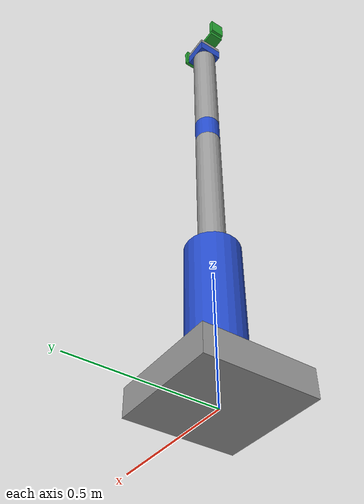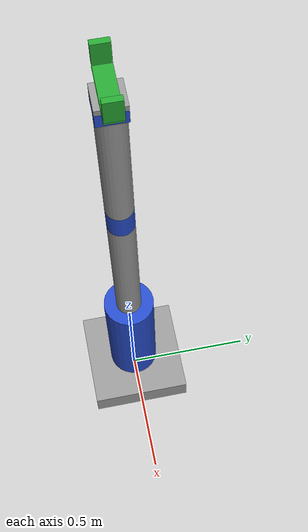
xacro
<?xml version="1.0"?>
<robot xmlns:xacro="http://www.ros.org/wiki/xacro" name="my_robot">
    <xacro:arg name="initial_positions_file" default="initial_positions.yaml" />

    <!-- Import my_robot urdf file -->
    <xacro:include filename="$(find my_robot_description)/urdf/my_robot.urdf.xacro" />

    <!-- Import control_xacro -->
    <xacro:include filename="my_robot.ros2_control.xacro" />

    <xacro:my_robot_ros2_control name="GazeboSystem" initial_positions_file="$(arg initial_positions_file)"/>

</robot>

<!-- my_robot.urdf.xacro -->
<robot xmlns:xacro="http://www.ros.org/wiki/xacro" name="my_robot">

    <!-- Include all component files -->
    <xacro:include filename="common_properties.xacro" />
    <xacro:include filename="arm.xacro" />
    <xacro:include filename="gripper.xacro" />

    <!-- Gazebo-specific configuration MUST come after all links/joints are defined -->
    <xacro:include filename="gazebo.xacro" />

</robot>

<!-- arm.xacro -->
<robot xmlns:xacro="http://www.ros.org/wiki/xacro">

    <link name="base_link">
        <visual>
            <geometry>
                <box size="0.4 0.4 0.1" />
            </geometry>
            <origin xyz="0 0 0.05" rpy="0 0 0" />
            <material name="grey" />
        </visual>
        <collision>
            <geometry>
                <box size="0.4 0.4 0.1" />
            </geometry>
            <origin xyz="0 0 0.05" rpy="0 0 0" />
        </collision>
        <inertial>
            <origin xyz="0 0 0.05" rpy="0 0 0" />
            <mass value="100.0" />
            <inertia ixx="0.0708" ixy="0.0" ixz="0.0"
                     iyy="0.0708" iyz="0.0"
                     izz="0.1333" />
        </inertial>
    </link>

    <link name="shoulder_link">
        <visual>
            <geometry>
                <cylinder length="0.5" radius="0.1" />
            </geometry>
            <origin xyz="0 0 0.25" rpy="0 0 0" />
            <material name="blue" />
        </visual>
        <collision>
            <geometry>
                <box size="0.2 0.2 0.5" />
            </geometry>
            <origin xyz="0 0 0.25" rpy="0 0 0" />
        </collision>
        <inertial>
            <origin xyz="0 0 0.25" rpy="0 0 0" />
            <mass value="2.0" />
            <inertia ixx="0.0450" ixy="0.0" ixz="0.0"
                     iyy="0.0450" iyz="0.0"
                     izz="0.0133" />
        </inertial>
    </link>

    <link name="arm_link">
        <visual>
            <geometry>
                <cylinder length="0.6" radius="0.05" />
            </geometry>
            <origin xyz="0 0 0.3" rpy="0 0 0" />
            <material name="grey" />
        </visual>
        <collision>
            <geometry>
                <box size="0.1 0.1 0.6" />
            </geometry>
            <origin xyz="0 0 0.3" rpy="0 0 0" />
        </collision>
        <inertial>
            <origin xyz="0 0 0.3" rpy="0 0 0" />
            <mass value="1.5" />
            <inertia ixx="0.0463" ixy="0.0" ixz="0.0"
                     iyy="0.0463" iyz="0.0"
                     izz="0.0025" />
        </inertial>
    </link>

    <link name="elbow_link">
        <visual>
            <geometry>
                <cylinder length="0.1" radius="0.05" />
            </geometry>
            <origin xyz="0 0 0.05" rpy="0 0 0" />
            <material name="blue" />
        </visual>
        <collision>
            <geometry>
                <box size="0.1 0.1 0.1" />
            </geometry>
            <origin xyz="0 0 0.05" rpy="0 0 0" />
        </collision>
        <inertial>
            <origin xyz="0 0 0.05" rpy="0 0 0" />
            <mass value="0.5" />
            <inertia ixx="0.0008" ixy="0.0" ixz="0.0"
                     iyy="0.0008" iyz="0.0"
                     izz="0.0008" />
        </inertial>
    </link>

    <link name="forearm_link">
        <visual>
            <geometry>
                <cylinder length="0.5" radius="0.05" />
            </geometry>
            <origin xyz="0 0 0.25" rpy="0 0 0" />
            <material name="grey" />
        </visual>
        <collision>
            <geometry>
                <box size="0.1 0.1 0.5" />
            </geometry>
            <origin xyz="0 0 0.25" rpy="0 0 0" />
        </collision>
        <inertial>
            <origin xyz="0 0 0.25" rpy="0 0 0" />
            <mass value="1.0" />
            <inertia ixx="0.0217" ixy="0.0" ixz="0.0"
                     iyy="0.0217" iyz="0.0"
                     izz="0.0017" />
        </inertial>
    </link>

    <link name="wrist_link">
        <visual>
            <geometry>
                <box size="0.1 0.1 0.05" />
            </geometry>
            <origin xyz="0 0 0.025" rpy="0 0 0" />
            <material name="blue" />
        </visual>
        <collision>
            <geometry>
                <box size="0.1 0.1 0.05" />
            </geometry>
            <origin xyz="0 0 0.025" rpy="0 0 0" />
        </collision>
        <inertial>
            <origin xyz="0 0 0.025" rpy="0 0 0" />
            <mass value="0.3" />
            <inertia ixx="0.0002" ixy="0.0" ixz="0.0"
                     iyy="0.0002" iyz="0.0"
                     izz="0.0005" />
        </inertial>
    </link>

    <link name="hand_link">
        <visual>
            <geometry>
                <box size="0.1 0.1 0.02" />
            </geometry>
            <origin xyz="0 0 0.01" rpy="0 0 0" />
            <material name="grey" />
        </visual>
        <collision>
            <geometry>
                <box size="0.1 0.1 0.02" />
            </geometry>
            <origin xyz="0 0 0.01" rpy="0 0 0" />
        </collision>
        <inertial>
            <origin xyz="0 0 0.01" rpy="0 0 0" />
            <mass value="0.2" />
            <inertia ixx="0.0001" ixy="0.0" ixz="0.0"
                     iyy="0.0001" iyz="0.0"
                     izz="0.0003" />
        </inertial>
    </link>

    <link name="tool_link">
        <inertial>
            <origin xyz="0 0 0" rpy="0 0 0" />
            <mass value="0.01" />
            <inertia ixx="0.00001" ixy="0.0" ixz="0.0"
                     iyy="0.00001" iyz="0.0"
                     izz="0.00001" />
        </inertial>
    </link>

    <joint name="joint1" type="revolute">
        <parent link="base_link" />
        <child link="shoulder_link" />
        <origin xyz="0 0 0.1" rpy="0 0 0" />
        <axis xyz="0 0 1" />
        <limit effort="1000.0" velocity="1.0" lower="-3.14" upper="3.14" />
    </joint>

    <joint name="joint2" type="revolute">
        <parent link="shoulder_link" />
        <child link="arm_link" />
        <origin xyz="0 0 0.5" rpy="0 0 0" />
        <axis xyz="0 1 0" />
        <limit lower="0" upper="2.5" effort="1000.0" velocity="1.0" />
    </joint>

    <joint name="joint3" type="revolute">
        <parent link="arm_link" />
        <child link="elbow_link" />
        <origin xyz="0 0 0.6" rpy="0 0 0" />
        <axis xyz="0 1 0" />
        <limit effort="1000.0" velocity="1.0" lower="0" upper="2.5" />
    </joint>

    <!-- Joints 4, 5, 6 are now FIXED - they won't move -->
    <joint name="joint4" type="fixed">
        <parent link="elbow_link" />
        <child link="forearm_link" />
        <origin xyz="0 0 0.1" rpy="0 0 0" />
    </joint>

    <joint name="joint5" type="fixed">
        <parent link="forearm_link" />
        <child link="wrist_link" />
        <origin xyz="0 0 0.5" rpy="0 0 0" />
    </joint>

    <joint name="joint6" type="fixed">
        <parent link="wrist_link" />
        <child link="hand_link" />
        <origin xyz="0 0 0.05" rpy="0 0 0" />
    </joint>

    <joint name="hand_tool_joint" type="fixed">
        <parent link="hand_link" />
        <child link="tool_link" />
        <origin xyz="0 0 0.02" rpy="0 0 0" />
    </joint>

</robot>

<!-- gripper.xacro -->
<robot xmlns:xacro="http://www.ros.org/wiki/xacro">

    <link name="gripper_base_link">
        <visual>
            <geometry>
                <box size="0.2 0.06 0.02" />
            </geometry>
            <origin xyz="0 0 0.01" rpy="0 0 0" />
            <material name="dark_green" />
        </visual>
        <collision>
            <geometry>
                <box size="0.2 0.06 0.02" />
            </geometry>
            <origin xyz="0 0 0.01" rpy="0 0 0" />
        </collision>
        <inertial>
            <origin xyz="0 0 0.01" rpy="0 0 0" />
            <mass value="0.1" />
            <inertia ixx="0.00003" ixy="0.0" ixz="0.0"
                     iyy="0.00003" iyz="0.0"
                     izz="0.00004" />
        </inertial>
    </link>

    <link name="gripper_left_finger_link">
        <visual>
            <geometry>
                <box size="0.02 0.06 0.08" />
            </geometry>
            <origin xyz="0 0 0.04" rpy="0 0 0" />
            <material name="light_green" />
        </visual>
        <collision>
            <geometry>
                <box size="0.02 0.06 0.08" />
            </geometry>
            <origin xyz="0 0 0.04" rpy="0 0 0" />
        </collision>
        <inertial>
            <origin xyz="0 0 0.04" rpy="0 0 0" />
            <mass value="0.05" />
            <inertia ixx="0.00003" ixy="0.0" ixz="0.0"
                     iyy="0.00003" iyz="0.0"
                     izz="0.00001" />
        </inertial>
    </link>

    <joint name="gripper_left_finger_joint" type="prismatic">
        <parent link="gripper_base_link" />
        <child link="gripper_left_finger_link" />
        <origin xyz="-0.10 0 0.02" rpy="0 0 0" />
        <axis xyz="1 0 0" />
        <limit lower="0.0" upper="0.04" effort="1000.0" velocity="1.0" />
    </joint>

    <link name="gripper_right_finger_link">
        <visual>
            <geometry>
                <box size="0.02 0.06 0.08" />
            </geometry>
            <origin xyz="0 0 0.04" rpy="0 0 0" />
            <material name="light_green" />
        </visual>
        <collision>
            <geometry>
                <box size="0.02 0.06 0.08" />
            </geometry>
            <origin xyz="0 0 0.04" rpy="0 0 0" />
        </collision>
        <inertial>
            <origin xyz="0 0 0.04" rpy="0 0 0" />
            <mass value="0.05" />
            <inertia ixx="0.00003" ixy="0.0" ixz="0.0"
                     iyy="0.00003" iyz="0.0"
                     izz="0.00001" />
        </inertial>
    </link>

    <joint name="gripper_right_finger_joint" type="prismatic">
        <parent link="gripper_base_link" />
        <child link="gripper_right_finger_link" />
        <origin xyz="0.10 0 0.02" rpy="0 0 0" />
        <axis xyz="-1 0 0" />
        <limit lower="0.0" upper="0.04" effort="1000.0" velocity="1.0" />
    </joint>

    <!-- Wrist rotation link (for gripper yaw) -->
    <link name="wrist_rotation_link">
        <visual>
            <geometry>
                <cylinder radius="0.02" length="0.01" />
            </geometry>
            <origin xyz="0 0 0" rpy="0 0 0" />
            <material name="dark_grey" />
        </visual>
        <collision>
            <geometry>
                <cylinder radius="0.02" length="0.01" />
            </geometry>
            <origin xyz="0 0 0" rpy="0 0 0" />
        </collision>
        <inertial>
            <origin xyz="0 0 0" rpy="0 0 0" />
            <mass value="0.1" />
            <inertia ixx="0.00001" ixy="0.0" ixz="0.0"
                     iyy="0.00001" iyz="0.0"
                     izz="0.00001" />
        </inertial>
    </link>

    <!-- Wrist rotation joint (yaw for gripper orientation) -->
    <joint name="wrist_rotation_joint" type="revolute">
        <parent link="tool_link" />
        <child link="wrist_rotation_link" />
        <origin xyz="0 0 0" rpy="0 0 0" />
        <axis xyz="0 0 1" />
        <limit lower="-1.57" upper="1.57" effort="100.0" velocity="1.0" />
    </joint>

    <!-- Joint to connect gripper to wrist -->
    <joint name="gripper_base_joint" type="fixed">
        <parent link="wrist_rotation_link" />
        <child link="gripper_base_link" />
        <origin xyz="0 0 0" rpy="0 0 0" />
    </joint>

</robot>
